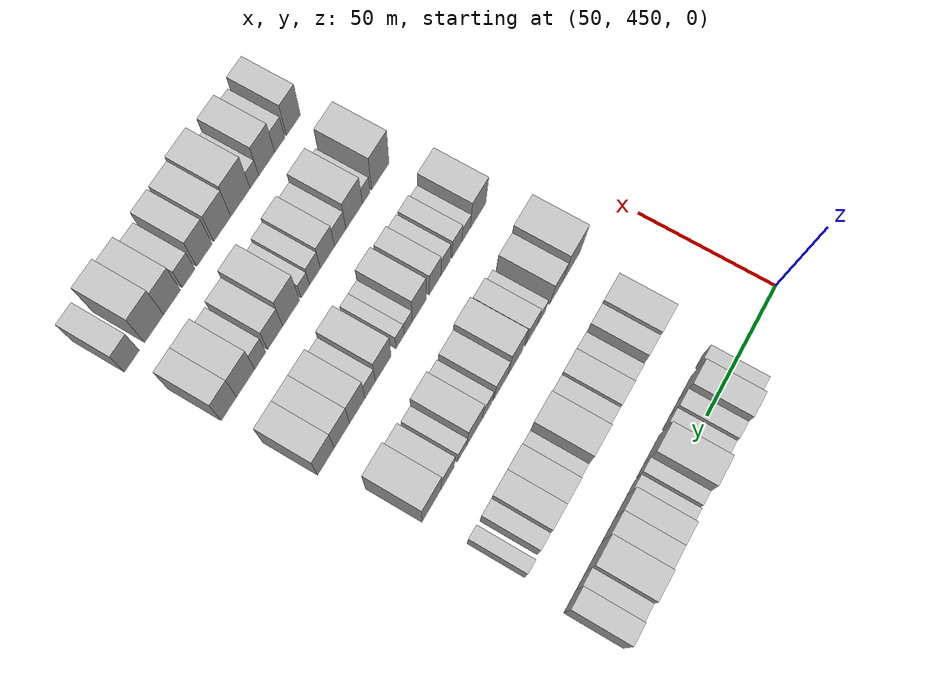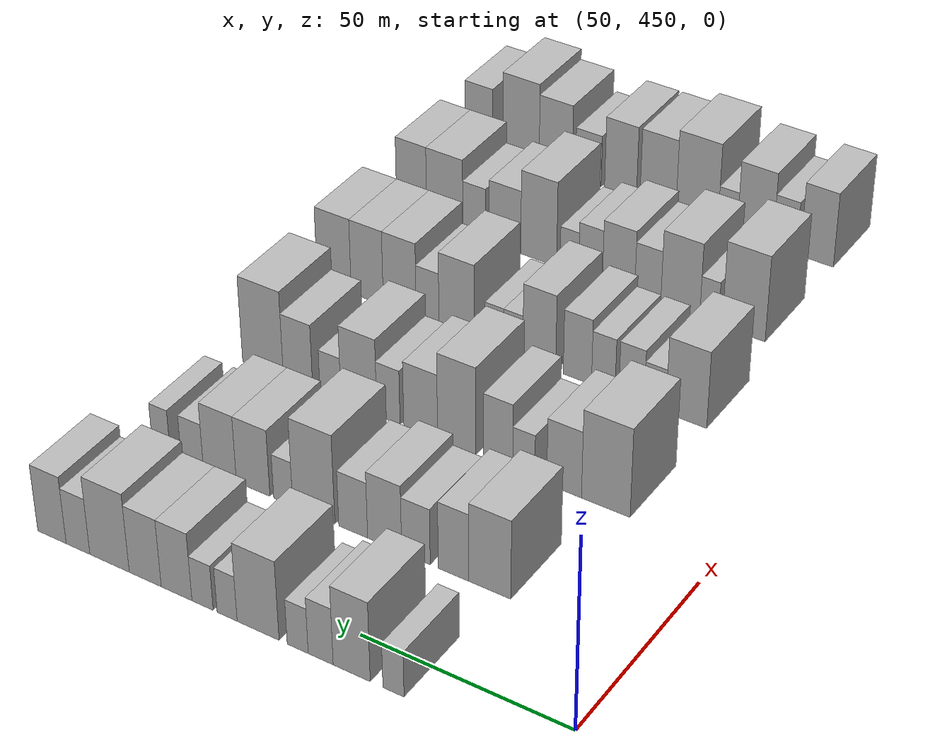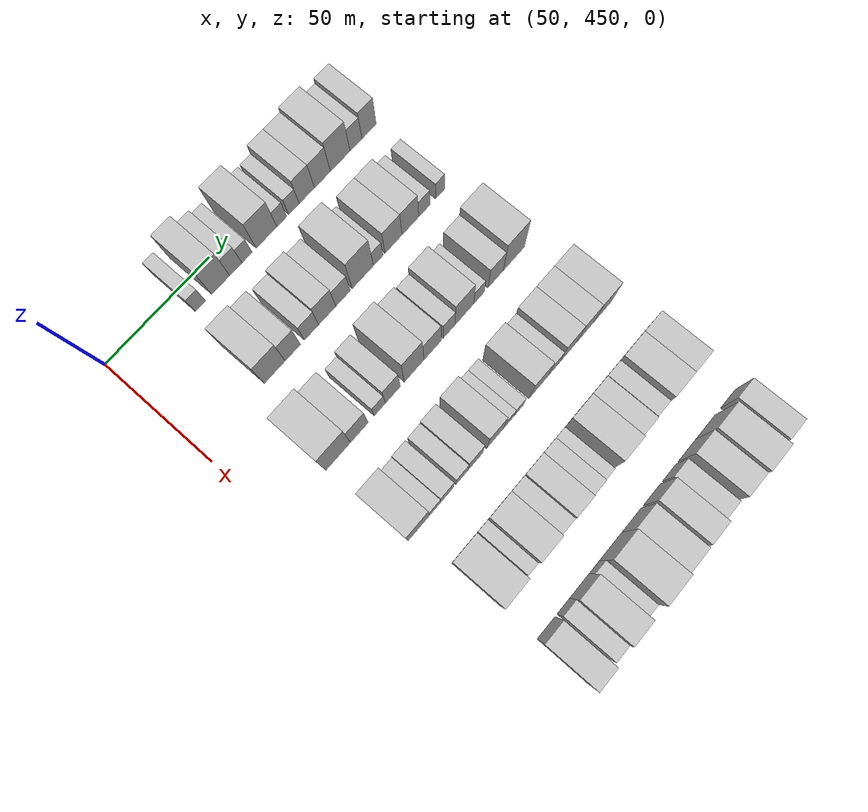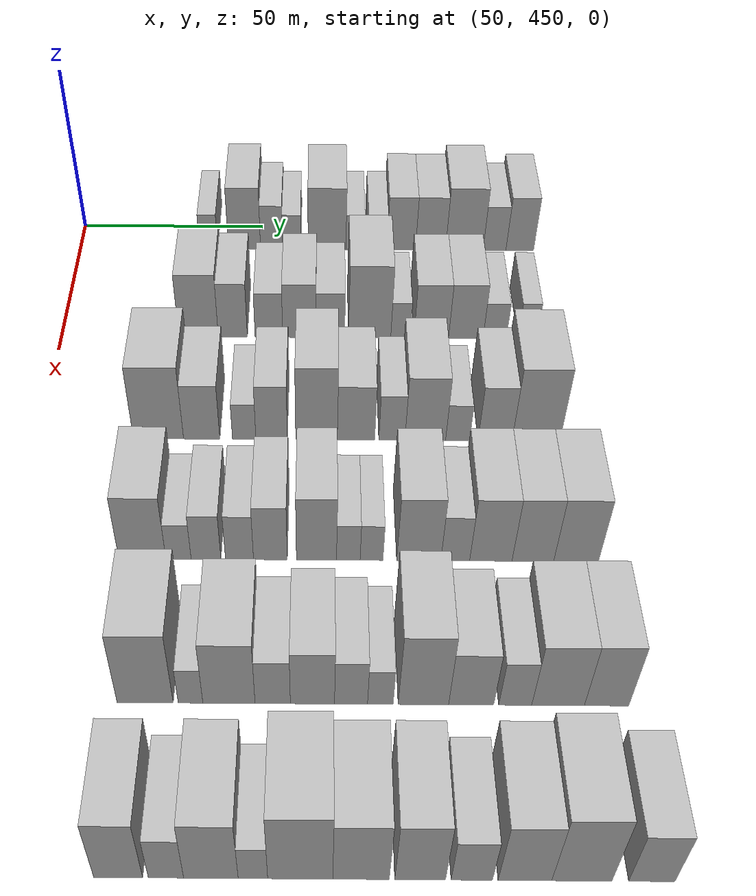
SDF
<sdf version="1.6">
 <world name="default">
  <model name="building_117">
   <static>1</static>
   <pose>50.0000 485.4658 0 0.000000 0.000000 0.000000</pose>
   <link name="link">
    <pose>0 0 6.00 0 0 0</pose>
    <collision name="collision"><geometry><box><size>20.0000 4.9831 12.0000</size></box></geometry></collision>
    <visual name="visual">
     <cast_shadows>0</cast_shadows>
     <geometry><box><size>20.0000 4.9831 12.0000</size></box></geometry>
     <material>
      <script>
       <uri>model://HANNAS_wall/materials/scripts</uri>
       <uri>model://HANNAS_wall/materials/textures</uri>
       <name>vrc/HANNAS_wall</name>
      </script>
     </material>
    </visual>
   </link>
  </model>
  <model name="building_118">
   <static>1</static>
   <pose>50.0000 495.3913 0 0.000000 0.000000 0.000000</pose>
   <link name="link">
    <pose>0 0 10.50 0 0 0</pose>
    <collision name="collision"><geometry><box><size>20.0000 8.8679 21.0000</size></box></geometry></collision>
    <visual name="visual">
     <cast_shadows>0</cast_shadows>
     <geometry><box><size>20.0000 8.8679 21.0000</size></box></geometry>
     <material>
      <script>
       <uri>model://HANNAS_wall/materials/scripts</uri>
       <uri>model://HANNAS_wall/materials/textures</uri>
       <name>vrc/HANNAS_wall</name>
      </script>
     </material>
    </visual>
   </link>
  </model>
  <model name="building_119">
   <static>1</static>
   <pose>50.0000 502.8509 0 0.000000 0.000000 0.000000</pose>
   <link name="link">
    <pose>0 0 7.50 0 0 0</pose>
    <collision name="collision"><geometry><box><size>20.0000 6.0511 15.0000</size></box></geometry></collision>
    <visual name="visual">
     <cast_shadows>0</cast_shadows>
     <geometry><box><size>20.0000 6.0511 15.0000</size></box></geometry>
     <material>
      <script>
       <uri>model://HANNAS_wall/materials/scripts</uri>
       <uri>model://HANNAS_wall/materials/textures</uri>
       <name>vrc/HANNAS_wall</name>
      </script>
     </material>
    </visual>
   </link>
  </model>
  <model name="building_120">
   <static>1</static>
   <pose>50.0000 508.4343 0 0.000000 0.000000 0.000000</pose>
   <link name="link">
    <pose>0 0 6.00 0 0 0</pose>
    <collision name="collision"><geometry><box><size>20.0000 5.1158 12.0000</size></box></geometry></collision>
    <visual name="visual">
     <cast_shadows>0</cast_shadows>
     <geometry><box><size>20.0000 5.1158 12.0000</size></box></geometry>
     <material>
      <script>
       <uri>model://HANNAS_wall/materials/scripts</uri>
       <uri>model://HANNAS_wall/materials/textures</uri>
       <name>vrc/HANNAS_wall</name>
      </script>
     </material>
    </visual>
   </link>
  </model>
  <model name="building_121">
   <static>1</static>
   <pose>50.0000 518.1984 0 0.000000 0.000000 0.000000</pose>
   <link name="link">
    <pose>0 0 10.50 0 0 0</pose>
    <collision name="collision"><geometry><box><size>20.0000 10.4124 21.0000</size></box></geometry></collision>
    <visual name="visual">
     <cast_shadows>0</cast_shadows>
     <geometry><box><size>20.0000 10.4124 21.0000</size></box></geometry>
     <material>
      <script>
       <uri>model://HANNAS_wall/materials/scripts</uri>
       <uri>model://HANNAS_wall/materials/textures</uri>
       <name>vrc/HANNAS_wall</name>
      </script>
     </material>
    </visual>
   </link>
  </model>
  <model name="building_122">
   <static>1</static>
   <pose>50.0000 525.9102 0 0.000000 0.000000 0.000000</pose>
   <link name="link">
    <pose>0 0 6.00 0 0 0</pose>
    <collision name="collision"><geometry><box><size>20.0000 5.0110 12.0000</size></box></geometry></collision>
    <visual name="visual">
     <cast_shadows>0</cast_shadows>
     <geometry><box><size>20.0000 5.0110 12.0000</size></box></geometry>
     <material>
      <script>
       <uri>model://HANNAS_wall/materials/scripts</uri>
       <uri>model://HANNAS_wall/materials/textures</uri>
       <name>vrc/HANNAS_wall</name>
      </script>
     </material>
    </visual>
   </link>
  </model>
  <model name="building_123">
   <static>1</static>
   <pose>50.0000 532.1084 0 0.000000 0.000000 0.000000</pose>
   <link name="link">
    <pose>0 0 6.00 0 0 0</pose>
    <collision name="collision"><geometry><box><size>20.0000 5.3854 12.0000</size></box></geometry></collision>
    <visual name="visual">
     <cast_shadows>0</cast_shadows>
     <geometry><box><size>20.0000 5.3854 12.0000</size></box></geometry>
     <material>
      <script>
       <uri>model://HANNAS_wall/materials/scripts</uri>
       <uri>model://HANNAS_wall/materials/textures</uri>
       <name>vrc/HANNAS_wall</name>
      </script>
     </material>
    </visual>
   </link>
  </model>
  <model name="building_124">
   <static>1</static>
   <pose>50.0000 538.7328 0 0.000000 0.000000 0.000000</pose>
   <link name="link">
    <pose>0 0 9.00 0 0 0</pose>
    <collision name="collision"><geometry><box><size>20.0000 7.8636 18.0000</size></box></geometry></collision>
    <visual name="visual">
     <cast_shadows>0</cast_shadows>
     <geometry><box><size>20.0000 7.8636 18.0000</size></box></geometry>
     <material>
      <script>
       <uri>model://HANNAS_wall/materials/scripts</uri>
       <uri>model://HANNAS_wall/materials/textures</uri>
       <name>vrc/HANNAS_wall</name>
      </script>
     </material>
    </visual>
   </link>
  </model>
  <model name="building_125">
   <static>1</static>
   <pose>50.0000 546.8155 0 0.000000 0.000000 0.000000</pose>
   <link name="link">
    <pose>0 0 9.00 0 0 0</pose>
    <collision name="collision"><geometry><box><size>20.0000 8.3018 18.0000</size></box></geometry></collision>
    <visual name="visual">
     <cast_shadows>0</cast_shadows>
     <geometry><box><size>20.0000 8.3018 18.0000</size></box></geometry>
     <material>
      <script>
       <uri>model://HANNAS_wall/materials/scripts</uri>
       <uri>model://HANNAS_wall/materials/textures</uri>
       <name>vrc/HANNAS_wall</name>
      </script>
     </material>
    </visual>
   </link>
  </model>
  <model name="building_126">
   <static>1</static>
   <pose>50.0000 556.1487 0 0.000000 0.000000 0.000000</pose>
   <link name="link">
    <pose>0 0 10.50 0 0 0</pose>
    <collision name="collision"><geometry><box><size>20.0000 10.3647 21.0000</size></box></geometry></collision>
    <visual name="visual">
     <cast_shadows>0</cast_shadows>
     <geometry><box><size>20.0000 10.3647 21.0000</size></box></geometry>
     <material>
      <script>
       <uri>model://HANNAS_wall/materials/scripts</uri>
       <uri>model://HANNAS_wall/materials/textures</uri>
       <name>vrc/HANNAS_wall</name>
      </script>
     </material>
    </visual>
   </link>
  </model>
  <model name="building_127">
   <static>1</static>
   <pose>50.0000 564.4930 0 0.000000 0.000000 0.000000</pose>
   <link name="link">
    <pose>0 0 7.50 0 0 0</pose>
    <collision name="collision"><geometry><box><size>20.0000 6.3238 15.0000</size></box></geometry></collision>
    <visual name="visual">
     <cast_shadows>0</cast_shadows>
     <geometry><box><size>20.0000 6.3238 15.0000</size></box></geometry>
     <material>
      <script>
       <uri>model://HANNAS_wall/materials/scripts</uri>
       <uri>model://HANNAS_wall/materials/textures</uri>
       <name>vrc/HANNAS_wall</name>
      </script>
     </material>
    </visual>
   </link>
  </model>
  <model name="building_128">
   <static>1</static>
   <pose>50.0000 571.4766 0 0.000000 0.000000 0.000000</pose>
   <link name="link">
    <pose>0 0 9.00 0 0 0</pose>
    <collision name="collision"><geometry><box><size>20.0000 7.6435 18.0000</size></box></geometry></collision>
    <visual name="visual">
     <cast_shadows>0</cast_shadows>
     <geometry><box><size>20.0000 7.6435 18.0000</size></box></geometry>
     <material>
      <script>
       <uri>model://HANNAS_wall/materials/scripts</uri>
       <uri>model://HANNAS_wall/materials/textures</uri>
       <name>vrc/HANNAS_wall</name>
      </script>
     </material>
    </visual>
   </link>
  </model>
  <model name="building_255">
   <static>1</static>
   <pose>85.0000 485.1821 0 0.000000 0.000000 0.000000</pose>
   <link name="link">
    <pose>0 0 10.50 0 0 0</pose>
    <collision name="collision"><geometry><box><size>20.0000 10.1524 21.0000</size></box></geometry></collision>
    <visual name="visual">
     <cast_shadows>0</cast_shadows>
     <geometry><box><size>20.0000 10.1524 21.0000</size></box></geometry>
     <material>
      <script>
       <uri>model://HANNAS_wall/materials/scripts</uri>
       <uri>model://HANNAS_wall/materials/textures</uri>
       <name>vrc/HANNAS_wall</name>
      </script>
     </material>
    </visual>
   </link>
  </model>
  <model name="building_256">
   <static>1</static>
   <pose>85.0000 493.9965 0 0.000000 0.000000 0.000000</pose>
   <link name="link">
    <pose>0 0 9.00 0 0 0</pose>
    <collision name="collision"><geometry><box><size>20.0000 7.4765 18.0000</size></box></geometry></collision>
    <visual name="visual">
     <cast_shadows>0</cast_shadows>
     <geometry><box><size>20.0000 7.4765 18.0000</size></box></geometry>
     <material>
      <script>
       <uri>model://HANNAS_wall/materials/scripts</uri>
       <uri>model://HANNAS_wall/materials/textures</uri>
       <name>vrc/HANNAS_wall</name>
      </script>
     </material>
    </visual>
   </link>
  </model>
  <model name="building_257">
   <static>1</static>
   <pose>85.0000 503.2728 0 0.000000 0.000000 0.000000</pose>
   <link name="link">
    <pose>0 0 7.50 0 0 0</pose>
    <collision name="collision"><geometry><box><size>20.0000 7.0763 15.0000</size></box></geometry></collision>
    <visual name="visual">
     <cast_shadows>0</cast_shadows>
     <geometry><box><size>20.0000 7.0763 15.0000</size></box></geometry>
     <material>
      <script>
       <uri>model://HANNAS_wall/materials/scripts</uri>
       <uri>model://HANNAS_wall/materials/textures</uri>
       <name>vrc/HANNAS_wall</name>
      </script>
     </material>
    </visual>
   </link>
  </model>
  <model name="building_258">
   <static>1</static>
   <pose>85.0000 511.0938 0 0.000000 0.000000 0.000000</pose>
   <link name="link">
    <pose>0 0 9.00 0 0 0</pose>
    <collision name="collision"><geometry><box><size>20.0000 8.5657 18.0000</size></box></geometry></collision>
    <visual name="visual">
     <cast_shadows>0</cast_shadows>
     <geometry><box><size>20.0000 8.5657 18.0000</size></box></geometry>
     <material>
      <script>
       <uri>model://HANNAS_wall/materials/scripts</uri>
       <uri>model://HANNAS_wall/materials/textures</uri>
       <name>vrc/HANNAS_wall</name>
      </script>
     </material>
    </visual>
   </link>
  </model>
  <model name="building_259">
   <static>1</static>
   <pose>85.0000 519.0474 0 0.000000 0.000000 0.000000</pose>
   <link name="link">
    <pose>0 0 7.50 0 0 0</pose>
    <collision name="collision"><geometry><box><size>20.0000 7.3415 15.0000</size></box></geometry></collision>
    <visual name="visual">
     <cast_shadows>0</cast_shadows>
     <geometry><box><size>20.0000 7.3415 15.0000</size></box></geometry>
     <material>
      <script>
       <uri>model://HANNAS_wall/materials/scripts</uri>
       <uri>model://HANNAS_wall/materials/textures</uri>
       <name>vrc/HANNAS_wall</name>
      </script>
     </material>
    </visual>
   </link>
  </model>
  <model name="building_260">
   <static>1</static>
   <pose>85.0000 529.1585 0 0.000000 0.000000 0.000000</pose>
   <link name="link">
    <pose>0 0 12.00 0 0 0</pose>
    <collision name="collision"><geometry><box><size>20.0000 10.8806 24.0000</size></box></geometry></collision>
    <visual name="visual">
     <cast_shadows>0</cast_shadows>
     <geometry><box><size>20.0000 10.8806 24.0000</size></box></geometry>
     <material>
      <script>
       <uri>model://HANNAS_wall/materials/scripts</uri>
       <uri>model://HANNAS_wall/materials/textures</uri>
       <name>vrc/HANNAS_wall</name>
      </script>
     </material>
    </visual>
   </link>
  </model>
  <model name="building_261">
   <static>1</static>
   <pose>85.0000 537.0919 0 0.000000 0.000000 0.000000</pose>
   <link name="link">
    <pose>0 0 6.00 0 0 0</pose>
    <collision name="collision"><geometry><box><size>20.0000 4.9863 12.0000</size></box></geometry></collision>
    <visual name="visual">
     <cast_shadows>0</cast_shadows>
     <geometry><box><size>20.0000 4.9863 12.0000</size></box></geometry>
     <material>
      <script>
       <uri>model://HANNAS_wall/materials/scripts</uri>
       <uri>model://HANNAS_wall/materials/textures</uri>
       <name>vrc/HANNAS_wall</name>
      </script>
     </material>
    </visual>
   </link>
  </model>
  <model name="building_262">
   <static>1</static>
   <pose>85.0000 545.0185 0 0.000000 0.000000 0.000000</pose>
   <link name="link">
    <pose>0 0 9.00 0 0 0</pose>
    <collision name="collision"><geometry><box><size>20.0000 8.8668 18.0000</size></box></geometry></collision>
    <visual name="visual">
     <cast_shadows>0</cast_shadows>
     <geometry><box><size>20.0000 8.8668 18.0000</size></box></geometry>
     <material>
      <script>
       <uri>model://HANNAS_wall/materials/scripts</uri>
       <uri>model://HANNAS_wall/materials/textures</uri>
       <name>vrc/HANNAS_wall</name>
      </script>
     </material>
    </visual>
   </link>
  </model>
  <model name="building_263">
   <static>1</static>
   <pose>85.0000 553.8823 0 0.000000 0.000000 0.000000</pose>
   <link name="link">
    <pose>0 0 9.00 0 0 0</pose>
    <collision name="collision"><geometry><box><size>20.0000 8.8607 18.0000</size></box></geometry></collision>
    <visual name="visual">
     <cast_shadows>0</cast_shadows>
     <geometry><box><size>20.0000 8.8607 18.0000</size></box></geometry>
     <material>
      <script>
       <uri>model://HANNAS_wall/materials/scripts</uri>
       <uri>model://HANNAS_wall/materials/textures</uri>
       <name>vrc/HANNAS_wall</name>
      </script>
     </material>
    </visual>
   </link>
  </model>
  <model name="building_264">
   <static>1</static>
   <pose>85.0000 561.3048 0 0.000000 0.000000 0.000000</pose>
   <link name="link">
    <pose>0 0 6.00 0 0 0</pose>
    <collision name="collision"><geometry><box><size>20.0000 5.9844 12.0000</size></box></geometry></collision>
    <visual name="visual">
     <cast_shadows>0</cast_shadows>
     <geometry><box><size>20.0000 5.9844 12.0000</size></box></geometry>
     <material>
      <script>
       <uri>model://HANNAS_wall/materials/scripts</uri>
       <uri>model://HANNAS_wall/materials/textures</uri>
       <name>vrc/HANNAS_wall</name>
      </script>
     </material>
    </visual>
   </link>
  </model>
  <model name="building_265">
   <static>1</static>
   <pose>85.0000 569.7184 0 0.000000 0.000000 0.000000</pose>
   <link name="link">
    <pose>0 0 6.00 0 0 0</pose>
    <collision name="collision"><geometry><box><size>20.0000 4.8427 12.0000</size></box></geometry></collision>
    <visual name="visual">
     <cast_shadows>0</cast_shadows>
     <geometry><box><size>20.0000 4.8427 12.0000</size></box></geometry>
     <material>
      <script>
       <uri>model://HANNAS_wall/materials/scripts</uri>
       <uri>model://HANNAS_wall/materials/textures</uri>
       <name>vrc/HANNAS_wall</name>
      </script>
     </material>
    </visual>
   </link>
  </model>
  <model name="building_380">
   <static>1</static>
   <pose>120.0000 478.1311 0 0.000000 0.000000 0.000000</pose>
   <link name="link">
    <pose>0 0 12.00 0 0 0</pose>
    <collision name="collision"><geometry><box><size>20.0000 11.9406 24.0000</size></box></geometry></collision>
    <visual name="visual">
     <cast_shadows>0</cast_shadows>
     <geometry><box><size>20.0000 11.9406 24.0000</size></box></geometry>
     <material>
      <script>
       <uri>model://HANNAS_wall/materials/scripts</uri>
       <uri>model://HANNAS_wall/materials/textures</uri>
       <name>vrc/HANNAS_wall</name>
      </script>
     </material>
    </visual>
   </link>
  </model>
  <model name="building_381">
   <static>1</static>
   <pose>120.0000 488.4197 0 0.000000 0.000000 0.000000</pose>
   <link name="link">
    <pose>0 0 9.00 0 0 0</pose>
    <collision name="collision"><geometry><box><size>20.0000 8.6367 18.0000</size></box></geometry></collision>
    <visual name="visual">
     <cast_shadows>0</cast_shadows>
     <geometry><box><size>20.0000 8.6367 18.0000</size></box></geometry>
     <material>
      <script>
       <uri>model://HANNAS_wall/materials/scripts</uri>
       <uri>model://HANNAS_wall/materials/textures</uri>
       <name>vrc/HANNAS_wall</name>
      </script>
     </material>
    </visual>
   </link>
  </model>
  <model name="building_382">
   <static>1</static>
   <pose>120.0000 498.5168 0 0.000000 0.000000 0.000000</pose>
   <link name="link">
    <pose>0 0 6.00 0 0 0</pose>
    <collision name="collision"><geometry><box><size>20.0000 5.5575 12.0000</size></box></geometry></collision>
    <visual name="visual">
     <cast_shadows>0</cast_shadows>
     <geometry><box><size>20.0000 5.5575 12.0000</size></box></geometry>
     <material>
      <script>
       <uri>model://HANNAS_wall/materials/scripts</uri>
       <uri>model://HANNAS_wall/materials/textures</uri>
       <name>vrc/HANNAS_wall</name>
      </script>
     </material>
    </visual>
   </link>
  </model>
  <model name="building_383">
   <static>1</static>
   <pose>120.0000 505.0442 0 0.000000 0.000000 0.000000</pose>
   <link name="link">
    <pose>0 0 9.00 0 0 0</pose>
    <collision name="collision"><geometry><box><size>20.0000 7.4972 18.0000</size></box></geometry></collision>
    <visual name="visual">
     <cast_shadows>0</cast_shadows>
     <geometry><box><size>20.0000 7.4972 18.0000</size></box></geometry>
     <material>
      <script>
       <uri>model://HANNAS_wall/materials/scripts</uri>
       <uri>model://HANNAS_wall/materials/textures</uri>
       <name>vrc/HANNAS_wall</name>
      </script>
     </material>
    </visual>
   </link>
  </model>
  <model name="building_384">
   <static>1</static>
   <pose>120.0000 515.7249 0 0.000000 0.000000 0.000000</pose>
   <link name="link">
    <pose>0 0 12.00 0 0 0</pose>
    <collision name="collision"><geometry><box><size>20.0000 9.8642 24.0000</size></box></geometry></collision>
    <visual name="visual">
     <cast_shadows>0</cast_shadows>
     <geometry><box><size>20.0000 9.8642 24.0000</size></box></geometry>
     <material>
      <script>
       <uri>model://HANNAS_wall/materials/scripts</uri>
       <uri>model://HANNAS_wall/materials/textures</uri>
       <name>vrc/HANNAS_wall</name>
      </script>
     </material>
    </visual>
   </link>
  </model>
  <model name="building_385">
   <static>1</static>
   <pose>120.0000 525.0958 0 0.000000 0.000000 0.000000</pose>
   <link name="link">
    <pose>0 0 9.00 0 0 0</pose>
    <collision name="collision"><geometry><box><size>20.0000 8.8776 18.0000</size></box></geometry></collision>
    <visual name="visual">
     <cast_shadows>0</cast_shadows>
     <geometry><box><size>20.0000 8.8776 18.0000</size></box></geometry>
     <material>
      <script>
       <uri>model://HANNAS_wall/materials/scripts</uri>
       <uri>model://HANNAS_wall/materials/textures</uri>
       <name>vrc/HANNAS_wall</name>
      </script>
     </material>
    </visual>
   </link>
  </model>
  <model name="building_386">
   <static>1</static>
   <pose>120.0000 533.6236 0 0.000000 0.000000 0.000000</pose>
   <link name="link">
    <pose>0 0 7.50 0 0 0</pose>
    <collision name="collision"><geometry><box><size>20.0000 6.1781 15.0000</size></box></geometry></collision>
    <visual name="visual">
     <cast_shadows>0</cast_shadows>
     <geometry><box><size>20.0000 6.1781 15.0000</size></box></geometry>
     <material>
      <script>
       <uri>model://HANNAS_wall/materials/scripts</uri>
       <uri>model://HANNAS_wall/materials/textures</uri>
       <name>vrc/HANNAS_wall</name>
      </script>
     </material>
    </visual>
   </link>
  </model>
  <model name="building_387">
   <static>1</static>
   <pose>120.0000 541.5467 0 0.000000 0.000000 0.000000</pose>
   <link name="link">
    <pose>0 0 10.50 0 0 0</pose>
    <collision name="collision"><geometry><box><size>20.0000 9.6680 21.0000</size></box></geometry></collision>
    <visual name="visual">
     <cast_shadows>0</cast_shadows>
     <geometry><box><size>20.0000 9.6680 21.0000</size></box></geometry>
     <material>
      <script>
       <uri>model://HANNAS_wall/materials/scripts</uri>
       <uri>model://HANNAS_wall/materials/textures</uri>
       <name>vrc/HANNAS_wall</name>
      </script>
     </material>
    </visual>
   </link>
  </model>
  <model name="building_388">
   <static>1</static>
   <pose>120.0000 549.2267 0 0.000000 0.000000 0.000000</pose>
   <link name="link">
    <pose>0 0 6.00 0 0 0</pose>
    <collision name="collision"><geometry><box><size>20.0000 5.6919 12.0000</size></box></geometry></collision>
    <visual name="visual">
     <cast_shadows>0</cast_shadows>
     <geometry><box><size>20.0000 5.6919 12.0000</size></box></geometry>
     <material>
      <script>
       <uri>model://HANNAS_wall/materials/scripts</uri>
       <uri>model://HANNAS_wall/materials/textures</uri>
       <name>vrc/HANNAS_wall</name>
      </script>
     </material>
    </visual>
   </link>
  </model>
  <model name="building_389">
   <static>1</static>
   <pose>120.0000 558.1146 0 0.000000 0.000000 0.000000</pose>
   <link name="link">
    <pose>0 0 9.00 0 0 0</pose>
    <collision name="collision"><geometry><box><size>20.0000 8.0841 18.0000</size></box></geometry></collision>
    <visual name="visual">
     <cast_shadows>0</cast_shadows>
     <geometry><box><size>20.0000 8.0841 18.0000</size></box></geometry>
     <material>
      <script>
       <uri>model://HANNAS_wall/materials/scripts</uri>
       <uri>model://HANNAS_wall/materials/textures</uri>
       <name>vrc/HANNAS_wall</name>
      </script>
     </material>
    </visual>
   </link>
  </model>
  <model name="building_390">
   <static>1</static>
   <pose>120.0000 567.8432 0 0.000000 0.000000 0.000000</pose>
   <link name="link">
    <pose>0 0 12.00 0 0 0</pose>
    <collision name="collision"><geometry><box><size>20.0000 11.3730 24.0000</size></box></geometry></collision>
    <visual name="visual">
     <cast_shadows>0</cast_shadows>
     <geometry><box><size>20.0000 11.3730 24.0000</size></box></geometry>
     <material>
      <script>
       <uri>model://HANNAS_wall/materials/scripts</uri>
       <uri>model://HANNAS_wall/materials/textures</uri>
       <name>vrc/HANNAS_wall</name>
      </script>
     </material>
    </visual>
   </link>
  </model>
  <model name="building_507">
   <static>1</static>
   <pose>155.0000 477.8770 0 0.000000 0.000000 0.000000</pose>
   <link name="link">
    <pose>0 0 10.50 0 0 0</pose>
    <collision name="collision"><geometry><box><size>20.0000 10.2913 21.0000</size></box></geometry></collision>
    <visual name="visual">
     <cast_shadows>0</cast_shadows>
     <geometry><box><size>20.0000 10.2913 21.0000</size></box></geometry>
     <material>
      <script>
       <uri>model://HANNAS_wall/materials/scripts</uri>
       <uri>model://HANNAS_wall/materials/textures</uri>
       <name>vrc/HANNAS_wall</name>
      </script>
     </material>
    </visual>
   </link>
  </model>
  <model name="building_508">
   <static>1</static>
   <pose>155.0000 485.7836 0 0.000000 0.000000 0.000000</pose>
   <link name="link">
    <pose>0 0 6.00 0 0 0</pose>
    <collision name="collision"><geometry><box><size>20.0000 5.5219 12.0000</size></box></geometry></collision>
    <visual name="visual">
     <cast_shadows>0</cast_shadows>
     <geometry><box><size>20.0000 5.5219 12.0000</size></box></geometry>
     <material>
      <script>
       <uri>model://HANNAS_wall/materials/scripts</uri>
       <uri>model://HANNAS_wall/materials/textures</uri>
       <name>vrc/HANNAS_wall</name>
      </script>
     </material>
    </visual>
   </link>
  </model>
  <model name="building_509">
   <static>1</static>
   <pose>155.0000 491.7984 0 0.000000 0.000000 0.000000</pose>
   <link name="link">
    <pose>0 0 7.50 0 0 0</pose>
    <collision name="collision"><geometry><box><size>20.0000 6.5077 15.0000</size></box></geometry></collision>
    <visual name="visual">
     <cast_shadows>0</cast_shadows>
     <geometry><box><size>20.0000 6.5077 15.0000</size></box></geometry>
     <material>
      <script>
       <uri>model://HANNAS_wall/materials/scripts</uri>
       <uri>model://HANNAS_wall/materials/textures</uri>
       <name>vrc/HANNAS_wall</name>
      </script>
     </material>
    </visual>
   </link>
  </model>
  <model name="building_510">
   <static>1</static>
   <pose>155.0000 499.1035 0 0.000000 0.000000 0.000000</pose>
   <link name="link">
    <pose>0 0 7.50 0 0 0</pose>
    <collision name="collision"><geometry><box><size>20.0000 6.1025 15.0000</size></box></geometry></collision>
    <visual name="visual">
     <cast_shadows>0</cast_shadows>
     <geometry><box><size>20.0000 6.1025 15.0000</size></box></geometry>
     <material>
      <script>
       <uri>model://HANNAS_wall/materials/scripts</uri>
       <uri>model://HANNAS_wall/materials/textures</uri>
       <name>vrc/HANNAS_wall</name>
      </script>
     </material>
    </visual>
   </link>
  </model>
  <model name="building_511">
   <static>1</static>
   <pose>155.0000 505.8481 0 0.000000 0.000000 0.000000</pose>
   <link name="link">
    <pose>0 0 9.00 0 0 0</pose>
    <collision name="collision"><geometry><box><size>20.0000 7.3866 18.0000</size></box></geometry></collision>
    <visual name="visual">
     <cast_shadows>0</cast_shadows>
     <geometry><box><size>20.0000 7.3866 18.0000</size></box></geometry>
     <material>
      <script>
       <uri>model://HANNAS_wall/materials/scripts</uri>
       <uri>model://HANNAS_wall/materials/textures</uri>
       <name>vrc/HANNAS_wall</name>
      </script>
     </material>
    </visual>
   </link>
  </model>
  <model name="building_512">
   <static>1</static>
   <pose>155.0000 515.9021 0 0.000000 0.000000 0.000000</pose>
   <link name="link">
    <pose>0 0 10.50 0 0 0</pose>
    <collision name="collision"><geometry><box><size>20.0000 8.7215 21.0000</size></box></geometry></collision>
    <visual name="visual">
     <cast_shadows>0</cast_shadows>
     <geometry><box><size>20.0000 8.7215 21.0000</size></box></geometry>
     <material>
      <script>
       <uri>model://HANNAS_wall/materials/scripts</uri>
       <uri>model://HANNAS_wall/materials/textures</uri>
       <name>vrc/HANNAS_wall</name>
      </script>
     </material>
    </visual>
   </link>
  </model>
  <model name="building_513">
   <static>1</static>
   <pose>155.0000 522.8456 0 0.000000 0.000000 0.000000</pose>
   <link name="link">
    <pose>0 0 6.00 0 0 0</pose>
    <collision name="collision"><geometry><box><size>20.0000 5.1654 12.0000</size></box></geometry></collision>
    <visual name="visual">
     <cast_shadows>0</cast_shadows>
     <geometry><box><size>20.0000 5.1654 12.0000</size></box></geometry>
     <material>
      <script>
       <uri>model://HANNAS_wall/materials/scripts</uri>
       <uri>model://HANNAS_wall/materials/textures</uri>
       <name>vrc/HANNAS_wall</name>
      </script>
     </material>
    </visual>
   </link>
  </model>
  <model name="building_514">
   <static>1</static>
   <pose>155.0000 527.9223 0 0.000000 0.000000 0.000000</pose>
   <link name="link">
    <pose>0 0 6.00 0 0 0</pose>
    <collision name="collision"><geometry><box><size>20.0000 4.9880 12.0000</size></box></geometry></collision>
    <visual name="visual">
     <cast_shadows>0</cast_shadows>
     <geometry><box><size>20.0000 4.9880 12.0000</size></box></geometry>
     <material>
      <script>
       <uri>model://HANNAS_wall/materials/scripts</uri>
       <uri>model://HANNAS_wall/materials/textures</uri>
       <name>vrc/HANNAS_wall</name>
      </script>
     </material>
    </visual>
   </link>
  </model>
  <model name="building_515">
   <static>1</static>
   <pose>155.0000 538.2184 0 0.000000 0.000000 0.000000</pose>
   <link name="link">
    <pose>0 0 10.50 0 0 0</pose>
    <collision name="collision"><geometry><box><size>20.0000 9.6042 21.0000</size></box></geometry></collision>
    <visual name="visual">
     <cast_shadows>0</cast_shadows>
     <geometry><box><size>20.0000 9.6042 21.0000</size></box></geometry>
     <material>
      <script>
       <uri>model://HANNAS_wall/materials/scripts</uri>
       <uri>model://HANNAS_wall/materials/textures</uri>
       <name>vrc/HANNAS_wall</name>
      </script>
     </material>
    </visual>
   </link>
  </model>
  <model name="building_516">
   <static>1</static>
   <pose>155.0000 546.1639 0 0.000000 0.000000 0.000000</pose>
   <link name="link">
    <pose>0 0 7.50 0 0 0</pose>
    <collision name="collision"><geometry><box><size>20.0000 6.2870 15.0000</size></box></geometry></collision>
    <visual name="visual">
     <cast_shadows>0</cast_shadows>
     <geometry><box><size>20.0000 6.2870 15.0000</size></box></geometry>
     <material>
      <script>
       <uri>model://HANNAS_wall/materials/scripts</uri>
       <uri>model://HANNAS_wall/materials/textures</uri>
       <name>vrc/HANNAS_wall</name>
      </script>
     </material>
    </visual>
   </link>
  </model>
  <model name="building_517">
   <static>1</static>
   <pose>155.0000 553.9265 0 0.000000 0.000000 0.000000</pose>
   <link name="link">
    <pose>0 0 10.50 0 0 0</pose>
    <collision name="collision"><geometry><box><size>20.0000 9.2382 21.0000</size></box></geometry></collision>
    <visual name="visual">
     <cast_shadows>0</cast_shadows>
     <geometry><box><size>20.0000 9.2382 21.0000</size></box></geometry>
     <material>
      <script>
       <uri>model://HANNAS_wall/materials/scripts</uri>
       <uri>model://HANNAS_wall/materials/textures</uri>
       <name>vrc/HANNAS_wall</name>
      </script>
     </material>
    </visual>
   </link>
  </model>
  <model name="building_518">
   <static>1</static>
   <pose>155.0000 563.0931 0 0.000000 0.000000 0.000000</pose>
   <link name="link">
    <pose>0 0 10.50 0 0 0</pose>
    <collision name="collision"><geometry><box><size>20.0000 9.0950 21.0000</size></box></geometry></collision>
    <visual name="visual">
     <cast_shadows>0</cast_shadows>
     <geometry><box><size>20.0000 9.0950 21.0000</size></box></geometry>
     <material>
      <script>
       <uri>model://HANNAS_wall/materials/scripts</uri>
       <uri>model://HANNAS_wall/materials/textures</uri>
       <name>vrc/HANNAS_wall</name>
      </script>
     </material>
    </visual>
   </link>
  </model>
  <model name="building_519">
   <static>1</static>
   <pose>155.0000 572.5151 0 0.000000 0.000000 0.000000</pose>
   <link name="link">
    <pose>0 0 10.50 0 0 0</pose>
    <collision name="collision"><geometry><box><size>20.0000 9.7491 21.0000</size></box></geometry></collision>
    <visual name="visual">
     <cast_shadows>0</cast_shadows>
     <geometry><box><size>20.0000 9.7491 21.0000</size></box></geometry>
     <material>
      <script>
       <uri>model://HANNAS_wall/materials/scripts</uri>
       <uri>model://HANNAS_wall/materials/textures</uri>
       <name>vrc/HANNAS_wall</name>
      </script>
     </material>
    </visual>
   </link>
  </model>
  <model name="building_636">
   <static>1</static>
   <pose>190.0000 482.0252 0 0.000000 0.000000 0.000000</pose>
   <link name="link">
    <pose>0 0 12.00 0 0 0</pose>
    <collision name="collision"><geometry><box><size>20.0000 11.1663 24.0000</size></box></geometry></collision>
    <visual name="visual">
     <cast_shadows>0</cast_shadows>
     <geometry><box><size>20.0000 11.1663 24.0000</size></box></geometry>
     <material>
      <script>
       <uri>model://HANNAS_wall/materials/scripts</uri>
       <uri>model://HANNAS_wall/materials/textures</uri>
       <name>vrc/HANNAS_wall</name>
      </script>
     </material>
    </visual>
   </link>
  </model>
  <model name="building_637">
   <static>1</static>
   <pose>190.0000 491.0616 0 0.000000 0.000000 0.000000</pose>
   <link name="link">
    <pose>0 0 6.00 0 0 0</pose>
    <collision name="collision"><geometry><box><size>20.0000 4.9066 12.0000</size></box></geometry></collision>
    <visual name="visual">
     <cast_shadows>0</cast_shadows>
     <geometry><box><size>20.0000 4.9066 12.0000</size></box></geometry>
     <material>
      <script>
       <uri>model://HANNAS_wall/materials/scripts</uri>
       <uri>model://HANNAS_wall/materials/textures</uri>
       <name>vrc/HANNAS_wall</name>
      </script>
     </material>
    </visual>
   </link>
  </model>
  <model name="building_638">
   <static>1</static>
   <pose>190.0000 498.7045 0 0.000000 0.000000 0.000000</pose>
   <link name="link">
    <pose>0 0 10.50 0 0 0</pose>
    <collision name="collision"><geometry><box><size>20.0000 10.3791 21.0000</size></box></geometry></collision>
    <visual name="visual">
     <cast_shadows>0</cast_shadows>
     <geometry><box><size>20.0000 10.3791 21.0000</size></box></geometry>
     <material>
      <script>
       <uri>model://HANNAS_wall/materials/scripts</uri>
       <uri>model://HANNAS_wall/materials/textures</uri>
       <name>vrc/HANNAS_wall</name>
      </script>
     </material>
    </visual>
   </link>
  </model>
  <model name="building_639">
   <static>1</static>
   <pose>190.0000 507.4040 0 0.000000 0.000000 0.000000</pose>
   <link name="link">
    <pose>0 0 7.50 0 0 0</pose>
    <collision name="collision"><geometry><box><size>20.0000 7.0199 15.0000</size></box></geometry></collision>
    <visual name="visual">
     <cast_shadows>0</cast_shadows>
     <geometry><box><size>20.0000 7.0199 15.0000</size></box></geometry>
     <material>
      <script>
       <uri>model://HANNAS_wall/materials/scripts</uri>
       <uri>model://HANNAS_wall/materials/textures</uri>
       <name>vrc/HANNAS_wall</name>
      </script>
     </material>
    </visual>
   </link>
  </model>
  <model name="building_640">
   <static>1</static>
   <pose>190.0000 515.2979 0 0.000000 0.000000 0.000000</pose>
   <link name="link">
    <pose>0 0 9.00 0 0 0</pose>
    <collision name="collision"><geometry><box><size>20.0000 8.7678 18.0000</size></box></geometry></collision>
    <visual name="visual">
     <cast_shadows>0</cast_shadows>
     <geometry><box><size>20.0000 8.7678 18.0000</size></box></geometry>
     <material>
      <script>
       <uri>model://HANNAS_wall/materials/scripts</uri>
       <uri>model://HANNAS_wall/materials/textures</uri>
       <name>vrc/HANNAS_wall</name>
      </script>
     </material>
    </visual>
   </link>
  </model>
  <model name="building_641">
   <static>1</static>
   <pose>190.0000 522.9620 0 0.000000 0.000000 0.000000</pose>
   <link name="link">
    <pose>0 0 7.50 0 0 0</pose>
    <collision name="collision"><geometry><box><size>20.0000 6.5604 15.0000</size></box></geometry></collision>
    <visual name="visual">
     <cast_shadows>0</cast_shadows>
     <geometry><box><size>20.0000 6.5604 15.0000</size></box></geometry>
     <material>
      <script>
       <uri>model://HANNAS_wall/materials/scripts</uri>
       <uri>model://HANNAS_wall/materials/textures</uri>
       <name>vrc/HANNAS_wall</name>
      </script>
     </material>
    </visual>
   </link>
  </model>
  <model name="building_642">
   <static>1</static>
   <pose>190.0000 528.7909 0 0.000000 0.000000 0.000000</pose>
   <link name="link">
    <pose>0 0 6.00 0 0 0</pose>
    <collision name="collision"><geometry><box><size>20.0000 5.0972 12.0000</size></box></geometry></collision>
    <visual name="visual">
     <cast_shadows>0</cast_shadows>
     <geometry><box><size>20.0000 5.0972 12.0000</size></box></geometry>
     <material>
      <script>
       <uri>model://HANNAS_wall/materials/scripts</uri>
       <uri>model://HANNAS_wall/materials/textures</uri>
       <name>vrc/HANNAS_wall</name>
      </script>
     </material>
    </visual>
   </link>
  </model>
  <model name="building_643">
   <static>1</static>
   <pose>190.0000 537.3496 0 0.000000 0.000000 0.000000</pose>
   <link name="link">
    <pose>0 0 12.00 0 0 0</pose>
    <collision name="collision"><geometry><box><size>20.0000 10.0202 24.0000</size></box></geometry></collision>
    <visual name="visual">
     <cast_shadows>0</cast_shadows>
     <geometry><box><size>20.0000 10.0202 24.0000</size></box></geometry>
     <material>
      <script>
       <uri>model://HANNAS_wall/materials/scripts</uri>
       <uri>model://HANNAS_wall/materials/textures</uri>
       <name>vrc/HANNAS_wall</name>
      </script>
     </material>
    </visual>
   </link>
  </model>
  <model name="building_644">
   <static>1</static>
   <pose>190.0000 546.8381 0 0.000000 0.000000 0.000000</pose>
   <link name="link">
    <pose>0 0 9.00 0 0 0</pose>
    <collision name="collision"><geometry><box><size>20.0000 8.9569 18.0000</size></box></geometry></collision>
    <visual name="visual">
     <cast_shadows>0</cast_shadows>
     <geometry><box><size>20.0000 8.9569 18.0000</size></box></geometry>
     <material>
      <script>
       <uri>model://HANNAS_wall/materials/scripts</uri>
       <uri>model://HANNAS_wall/materials/textures</uri>
       <name>vrc/HANNAS_wall</name>
      </script>
     </material>
    </visual>
   </link>
  </model>
  <model name="building_645">
   <static>1</static>
   <pose>190.0000 555.5871 0 0.000000 0.000000 0.000000</pose>
   <link name="link">
    <pose>0 0 7.50 0 0 0</pose>
    <collision name="collision"><geometry><box><size>20.0000 6.5409 15.0000</size></box></geometry></collision>
    <visual name="visual">
     <cast_shadows>0</cast_shadows>
     <geometry><box><size>20.0000 6.5409 15.0000</size></box></geometry>
     <material>
      <script>
       <uri>model://HANNAS_wall/materials/scripts</uri>
       <uri>model://HANNAS_wall/materials/textures</uri>
       <name>vrc/HANNAS_wall</name>
      </script>
     </material>
    </visual>
   </link>
  </model>
  <model name="building_646">
   <static>1</static>
   <pose>190.0000 564.0930 0 0.000000 0.000000 0.000000</pose>
   <link name="link">
    <pose>0 0 10.50 0 0 0</pose>
    <collision name="collision"><geometry><box><size>20.0000 10.4710 21.0000</size></box></geometry></collision>
    <visual name="visual">
     <cast_shadows>0</cast_shadows>
     <geometry><box><size>20.0000 10.4710 21.0000</size></box></geometry>
     <material>
      <script>
       <uri>model://HANNAS_wall/materials/scripts</uri>
       <uri>model://HANNAS_wall/materials/textures</uri>
       <name>vrc/HANNAS_wall</name>
      </script>
     </material>
    </visual>
   </link>
  </model>
  <model name="building_647">
   <static>1</static>
   <pose>190.0000 573.7291 0 0.000000 0.000000 0.000000</pose>
   <link name="link">
    <pose>0 0 10.50 0 0 0</pose>
    <collision name="collision"><geometry><box><size>20.0000 8.8011 21.0000</size></box></geometry></collision>
    <visual name="visual">
     <cast_shadows>0</cast_shadows>
     <geometry><box><size>20.0000 8.8011 21.0000</size></box></geometry>
     <material>
      <script>
       <uri>model://HANNAS_wall/materials/scripts</uri>
       <uri>model://HANNAS_wall/materials/textures</uri>
       <name>vrc/HANNAS_wall</name>
      </script>
     </material>
    </visual>
   </link>
  </model>
  <model name="building_758">
   <static>1</static>
   <pose>225.0000 480.7258 0 0.000000 0.000000 0.000000</pose>
   <link name="link">
    <pose>0 0 10.50 0 0 0</pose>
    <collision name="collision"><geometry><box><size>20.0000 8.8004 21.0000</size></box></geometry></collision>
    <visual name="visual">
     <cast_shadows>0</cast_shadows>
     <geometry><box><size>20.0000 8.8004 21.0000</size></box></geometry>
     <material>
      <script>
       <uri>model://HANNAS_wall/materials/scripts</uri>
       <uri>model://HANNAS_wall/materials/textures</uri>
       <name>vrc/HANNAS_wall</name>
      </script>
     </material>
    </visual>
   </link>
  </model>
  <model name="building_759">
   <static>1</static>
   <pose>225.0000 489.2962 0 0.000000 0.000000 0.000000</pose>
   <link name="link">
    <pose>0 0 7.50 0 0 0</pose>
    <collision name="collision"><geometry><box><size>20.0000 6.3403 15.0000</size></box></geometry></collision>
    <visual name="visual">
     <cast_shadows>0</cast_shadows>
     <geometry><box><size>20.0000 6.3403 15.0000</size></box></geometry>
     <material>
      <script>
       <uri>model://HANNAS_wall/materials/scripts</uri>
       <uri>model://HANNAS_wall/materials/textures</uri>
       <name>vrc/HANNAS_wall</name>
      </script>
     </material>
    </visual>
   </link>
  </model>
  <model name="building_760">
   <static>1</static>
   <pose>225.0000 497.3624 0 0.000000 0.000000 0.000000</pose>
   <link name="link">
    <pose>0 0 10.50 0 0 0</pose>
    <collision name="collision"><geometry><box><size>20.0000 9.7920 21.0000</size></box></geometry></collision>
    <visual name="visual">
     <cast_shadows>0</cast_shadows>
     <geometry><box><size>20.0000 9.7920 21.0000</size></box></geometry>
     <material>
      <script>
       <uri>model://HANNAS_wall/materials/scripts</uri>
       <uri>model://HANNAS_wall/materials/textures</uri>
       <name>vrc/HANNAS_wall</name>
      </script>
     </material>
    </visual>
   </link>
  </model>
  <model name="building_761">
   <static>1</static>
   <pose>225.0000 504.9066 0 0.000000 0.000000 0.000000</pose>
   <link name="link">
    <pose>0 0 6.00 0 0 0</pose>
    <collision name="collision"><geometry><box><size>20.0000 5.2966 12.0000</size></box></geometry></collision>
    <visual name="visual">
     <cast_shadows>0</cast_shadows>
     <geometry><box><size>20.0000 5.2966 12.0000</size></box></geometry>
     <material>
      <script>
       <uri>model://HANNAS_wall/materials/scripts</uri>
       <uri>model://HANNAS_wall/materials/textures</uri>
       <name>vrc/HANNAS_wall</name>
      </script>
     </material>
    </visual>
   </link>
  </model>
  <model name="building_762">
   <static>1</static>
   <pose>225.0000 513.3833 0 0.000000 0.000000 0.000000</pose>
   <link name="link">
    <pose>0 0 12.00 0 0 0</pose>
    <collision name="collision"><geometry><box><size>20.0000 11.6568 24.0000</size></box></geometry></collision>
    <visual name="visual">
     <cast_shadows>0</cast_shadows>
     <geometry><box><size>20.0000 11.6568 24.0000</size></box></geometry>
     <material>
      <script>
       <uri>model://HANNAS_wall/materials/scripts</uri>
       <uri>model://HANNAS_wall/materials/textures</uri>
       <name>vrc/HANNAS_wall</name>
      </script>
     </material>
    </visual>
   </link>
  </model>
  <model name="building_763">
   <static>1</static>
   <pose>225.0000 524.2788 0 0.000000 0.000000 0.000000</pose>
   <link name="link">
    <pose>0 0 10.50 0 0 0</pose>
    <collision name="collision"><geometry><box><size>20.0000 10.1340 21.0000</size></box></geometry></collision>
    <visual name="visual">
     <cast_shadows>0</cast_shadows>
     <geometry><box><size>20.0000 10.1340 21.0000</size></box></geometry>
     <material>
      <script>
       <uri>model://HANNAS_wall/materials/scripts</uri>
       <uri>model://HANNAS_wall/materials/textures</uri>
       <name>vrc/HANNAS_wall</name>
      </script>
     </material>
    </visual>
   </link>
  </model>
  <model name="building_764">
   <static>1</static>
   <pose>225.0000 534.8899 0 0.000000 0.000000 0.000000</pose>
   <link name="link">
    <pose>0 0 10.50 0 0 0</pose>
    <collision name="collision"><geometry><box><size>20.0000 9.0882 21.0000</size></box></geometry></collision>
    <visual name="visual">
     <cast_shadows>0</cast_shadows>
     <geometry><box><size>20.0000 9.0882 21.0000</size></box></geometry>
     <material>
      <script>
       <uri>model://HANNAS_wall/materials/scripts</uri>
       <uri>model://HANNAS_wall/materials/textures</uri>
       <name>vrc/HANNAS_wall</name>
      </script>
     </material>
    </visual>
   </link>
  </model>
  <model name="building_765">
   <static>1</static>
   <pose>225.0000 544.1464 0 0.000000 0.000000 0.000000</pose>
   <link name="link">
    <pose>0 0 7.50 0 0 0</pose>
    <collision name="collision"><geometry><box><size>20.0000 7.4248 15.0000</size></box></geometry></collision>
    <visual name="visual">
     <cast_shadows>0</cast_shadows>
     <geometry><box><size>20.0000 7.4248 15.0000</size></box></geometry>
     <material>
      <script>
       <uri>model://HANNAS_wall/materials/scripts</uri>
       <uri>model://HANNAS_wall/materials/textures</uri>
       <name>vrc/HANNAS_wall</name>
      </script>
     </material>
    </visual>
   </link>
  </model>
  <model name="building_766">
   <static>1</static>
   <pose>225.0000 553.6632 0 0.000000 0.000000 0.000000</pose>
   <link name="link">
    <pose>0 0 10.50 0 0 0</pose>
    <collision name="collision"><geometry><box><size>20.0000 9.6089 21.0000</size></box></geometry></collision>
    <visual name="visual">
     <cast_shadows>0</cast_shadows>
     <geometry><box><size>20.0000 9.6089 21.0000</size></box></geometry>
     <material>
      <script>
       <uri>model://HANNAS_wall/materials/scripts</uri>
       <uri>model://HANNAS_wall/materials/textures</uri>
       <name>vrc/HANNAS_wall</name>
      </script>
     </material>
    </visual>
   </link>
  </model>
  <model name="building_767">
   <static>1</static>
   <pose>225.0000 563.8537 0 0.000000 0.000000 0.000000</pose>
   <link name="link">
    <pose>0 0 12.00 0 0 0</pose>
    <collision name="collision"><geometry><box><size>20.0000 10.7721 24.0000</size></box></geometry></collision>
    <visual name="visual">
     <cast_shadows>0</cast_shadows>
     <geometry><box><size>20.0000 10.7721 24.0000</size></box></geometry>
     <material>
      <script>
       <uri>model://HANNAS_wall/materials/scripts</uri>
       <uri>model://HANNAS_wall/materials/textures</uri>
       <name>vrc/HANNAS_wall</name>
      </script>
     </material>
    </visual>
   </link>
  </model>
  <model name="building_768">
   <static>1</static>
   <pose>225.0000 576.3835 0 0.000000 0.000000 0.000000</pose>
   <link name="link">
    <pose>0 0 9.00 0 0 0</pose>
    <collision name="collision"><geometry><box><size>20.0000 8.2875 18.0000</size></box></geometry></collision>
    <visual name="visual">
     <cast_shadows>0</cast_shadows>
     <geometry><box><size>20.0000 8.2875 18.0000</size></box></geometry>
     <material>
      <script>
       <uri>model://HANNAS_wall/materials/scripts</uri>
       <uri>model://HANNAS_wall/materials/textures</uri>
       <name>vrc/HANNAS_wall</name>
      </script>
     </material>
    </visual>
   </link>
  </model>
 </world>
</sdf>
